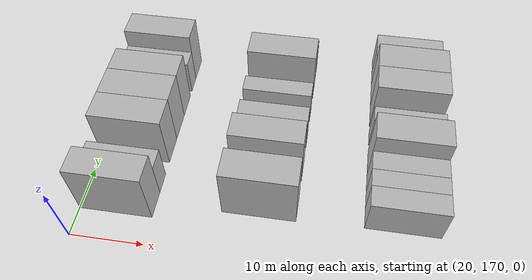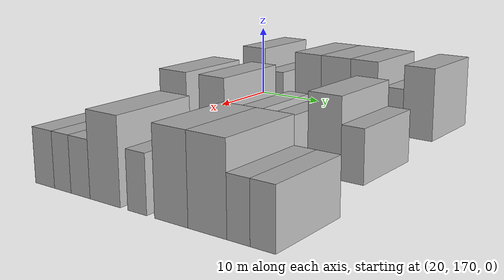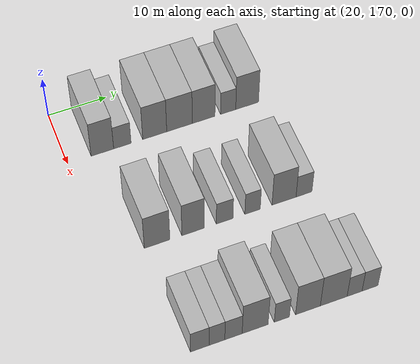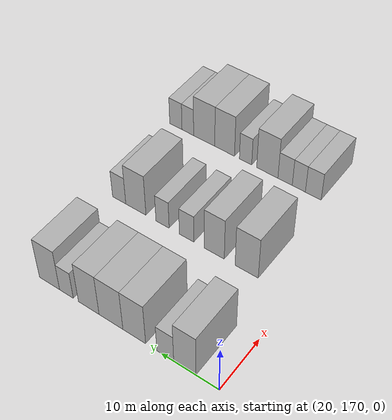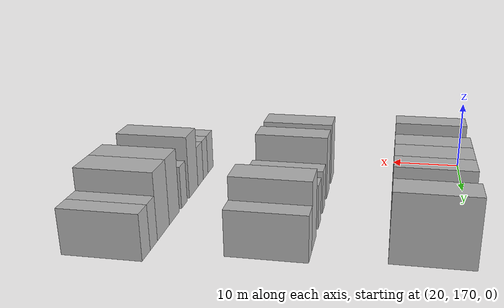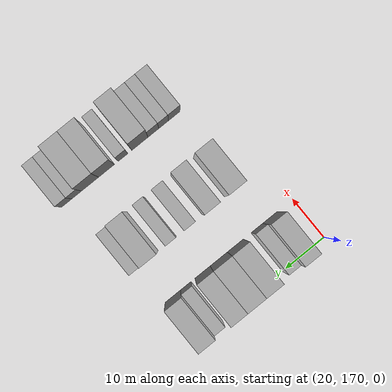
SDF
<sdf version="1.6">
 <world name="default">
  <model name="building_105">
   <static>1</static>
   <pose>25.0000 175.8924 0 0.000000 0.000000 0.000000</pose>
   <link name="link">
    <pose>0 0 4.50 0 0 0</pose>
    <collision name="collision"><geometry><box><size>10.0000 3.8440 9.0000</size></box></geometry></collision>
    <visual name="visual">
     <cast_shadows>0</cast_shadows>
     <geometry><box><size>10.0000 3.8440 9.0000</size></box></geometry>
     <material>
      <script>
       <uri>model://HANNAS_wall/materials/scripts</uri>
       <uri>model://HANNAS_wall/materials/textures</uri>
       <name>vrc/HANNAS_wall</name>
      </script>
     </material>
    </visual>
   </link>
  </model>
  <model name="building_106">
   <static>1</static>
   <pose>25.0000 179.3023 0 0.000000 0.000000 0.000000</pose>
   <link name="link">
    <pose>0 0 3.00 0 0 0</pose>
    <collision name="collision"><geometry><box><size>10.0000 2.9758 6.0000</size></box></geometry></collision>
    <visual name="visual">
     <cast_shadows>0</cast_shadows>
     <geometry><box><size>10.0000 2.9758 6.0000</size></box></geometry>
     <material>
      <script>
       <uri>model://HANNAS_wall/materials/scripts</uri>
       <uri>model://HANNAS_wall/materials/textures</uri>
       <name>vrc/HANNAS_wall</name>
      </script>
     </material>
    </visual>
   </link>
  </model>
  <model name="building_107">
   <static>1</static>
   <pose>25.0000 184.8642 0 0.000000 0.000000 0.000000</pose>
   <link name="link">
    <pose>0 0 4.50 0 0 0</pose>
    <collision name="collision"><geometry><box><size>10.0000 4.1479 9.0000</size></box></geometry></collision>
    <visual name="visual">
     <cast_shadows>0</cast_shadows>
     <geometry><box><size>10.0000 4.1479 9.0000</size></box></geometry>
     <material>
      <script>
       <uri>model://HANNAS_wall/materials/scripts</uri>
       <uri>model://HANNAS_wall/materials/textures</uri>
       <name>vrc/HANNAS_wall</name>
      </script>
     </material>
    </visual>
   </link>
  </model>
  <model name="building_108">
   <static>1</static>
   <pose>25.0000 189.1659 0 0.000000 0.000000 0.000000</pose>
   <link name="link">
    <pose>0 0 4.50 0 0 0</pose>
    <collision name="collision"><geometry><box><size>10.0000 4.4556 9.0000</size></box></geometry></collision>
    <visual name="visual">
     <cast_shadows>0</cast_shadows>
     <geometry><box><size>10.0000 4.4556 9.0000</size></box></geometry>
     <material>
      <script>
       <uri>model://HANNAS_wall/materials/scripts</uri>
       <uri>model://HANNAS_wall/materials/textures</uri>
       <name>vrc/HANNAS_wall</name>
      </script>
     </material>
    </visual>
   </link>
  </model>
  <model name="building_109">
   <static>1</static>
   <pose>25.0000 193.3705 0 0.000000 0.000000 0.000000</pose>
   <link name="link">
    <pose>0 0 4.50 0 0 0</pose>
    <collision name="collision"><geometry><box><size>10.0000 3.9536 9.0000</size></box></geometry></collision>
    <visual name="visual">
     <cast_shadows>0</cast_shadows>
     <geometry><box><size>10.0000 3.9536 9.0000</size></box></geometry>
     <material>
      <script>
       <uri>model://HANNAS_wall/materials/scripts</uri>
       <uri>model://HANNAS_wall/materials/textures</uri>
       <name>vrc/HANNAS_wall</name>
      </script>
     </material>
    </visual>
   </link>
  </model>
  <model name="building_110">
   <static>1</static>
   <pose>25.0000 197.6807 0 0.000000 0.000000 0.000000</pose>
   <link name="link">
    <pose>0 0 3.00 0 0 0</pose>
    <collision name="collision"><geometry><box><size>10.0000 2.6667 6.0000</size></box></geometry></collision>
    <visual name="visual">
     <cast_shadows>0</cast_shadows>
     <geometry><box><size>10.0000 2.6667 6.0000</size></box></geometry>
     <material>
      <script>
       <uri>model://HANNAS_wall/materials/scripts</uri>
       <uri>model://HANNAS_wall/materials/textures</uri>
       <name>vrc/HANNAS_wall</name>
      </script>
     </material>
    </visual>
   </link>
  </model>
  <model name="building_111">
   <static>1</static>
   <pose>25.0000 201.0254 0 0.000000 0.000000 0.000000</pose>
   <link name="link">
    <pose>0 0 4.50 0 0 0</pose>
    <collision name="collision"><geometry><box><size>10.0000 4.0227 9.0000</size></box></geometry></collision>
    <visual name="visual">
     <cast_shadows>0</cast_shadows>
     <geometry><box><size>10.0000 4.0227 9.0000</size></box></geometry>
     <material>
      <script>
       <uri>model://HANNAS_wall/materials/scripts</uri>
       <uri>model://HANNAS_wall/materials/textures</uri>
       <name>vrc/HANNAS_wall</name>
      </script>
     </material>
    </visual>
   </link>
  </model>
  <model name="building_227">
   <static>1</static>
   <pose>44.0000 178.2673 0 0.000000 0.000000 0.000000</pose>
   <link name="link">
    <pose>0 0 4.50 0 0 0</pose>
    <collision name="collision"><geometry><box><size>10.0000 4.2207 9.0000</size></box></geometry></collision>
    <visual name="visual">
     <cast_shadows>0</cast_shadows>
     <geometry><box><size>10.0000 4.2207 9.0000</size></box></geometry>
     <material>
      <script>
       <uri>model://HANNAS_wall/materials/scripts</uri>
       <uri>model://HANNAS_wall/materials/textures</uri>
       <name>vrc/HANNAS_wall</name>
      </script>
     </material>
    </visual>
   </link>
  </model>
  <model name="building_228">
   <static>1</static>
   <pose>44.0000 184.2509 0 0.000000 0.000000 0.000000</pose>
   <link name="link">
    <pose>0 0 4.50 0 0 0</pose>
    <collision name="collision"><geometry><box><size>10.0000 3.7465 9.0000</size></box></geometry></collision>
    <visual name="visual">
     <cast_shadows>0</cast_shadows>
     <geometry><box><size>10.0000 3.7465 9.0000</size></box></geometry>
     <material>
      <script>
       <uri>model://HANNAS_wall/materials/scripts</uri>
       <uri>model://HANNAS_wall/materials/textures</uri>
       <name>vrc/HANNAS_wall</name>
      </script>
     </material>
    </visual>
   </link>
  </model>
  <model name="building_229">
   <static>1</static>
   <pose>44.0000 189.5262 0 0.000000 0.000000 0.000000</pose>
   <link name="link">
    <pose>0 0 3.00 0 0 0</pose>
    <collision name="collision"><geometry><box><size>10.0000 2.8040 6.0000</size></box></geometry></collision>
    <visual name="visual">
     <cast_shadows>0</cast_shadows>
     <geometry><box><size>10.0000 2.8040 6.0000</size></box></geometry>
     <material>
      <script>
       <uri>model://HANNAS_wall/materials/scripts</uri>
       <uri>model://HANNAS_wall/materials/textures</uri>
       <name>vrc/HANNAS_wall</name>
      </script>
     </material>
    </visual>
   </link>
  </model>
  <model name="building_230">
   <static>1</static>
   <pose>44.0000 194.2354 0 0.000000 0.000000 0.000000</pose>
   <link name="link">
    <pose>0 0 3.00 0 0 0</pose>
    <collision name="collision"><geometry><box><size>10.0000 2.6144 6.0000</size></box></geometry></collision>
    <visual name="visual">
     <cast_shadows>0</cast_shadows>
     <geometry><box><size>10.0000 2.6144 6.0000</size></box></geometry>
     <material>
      <script>
       <uri>model://HANNAS_wall/materials/scripts</uri>
       <uri>model://HANNAS_wall/materials/textures</uri>
       <name>vrc/HANNAS_wall</name>
      </script>
     </material>
    </visual>
   </link>
  </model>
  <model name="building_231">
   <static>1</static>
   <pose>44.0000 199.5970 0 0.000000 0.000000 0.000000</pose>
   <link name="link">
    <pose>0 0 4.50 0 0 0</pose>
    <collision name="collision"><geometry><box><size>10.0000 4.1090 9.0000</size></box></geometry></collision>
    <visual name="visual">
     <cast_shadows>0</cast_shadows>
     <geometry><box><size>10.0000 4.1090 9.0000</size></box></geometry>
     <material>
      <script>
       <uri>model://HANNAS_wall/materials/scripts</uri>
       <uri>model://HANNAS_wall/materials/textures</uri>
       <name>vrc/HANNAS_wall</name>
      </script>
     </material>
    </visual>
   </link>
  </model>
  <model name="building_232">
   <static>1</static>
   <pose>44.0000 203.0188 0 0.000000 0.000000 0.000000</pose>
   <link name="link">
    <pose>0 0 3.00 0 0 0</pose>
    <collision name="collision"><geometry><box><size>10.0000 2.7346 6.0000</size></box></geometry></collision>
    <visual name="visual">
     <cast_shadows>0</cast_shadows>
     <geometry><box><size>10.0000 2.7346 6.0000</size></box></geometry>
     <material>
      <script>
       <uri>model://HANNAS_wall/materials/scripts</uri>
       <uri>model://HANNAS_wall/materials/textures</uri>
       <name>vrc/HANNAS_wall</name>
      </script>
     </material>
    </visual>
   </link>
  </model>
  <model name="building_341">
   <static>1</static>
   <pose>63.0000 178.0288 0 0.000000 0.000000 0.000000</pose>
   <link name="link">
    <pose>0 0 3.00 0 0 0</pose>
    <collision name="collision"><geometry><box><size>10.0000 2.9754 6.0000</size></box></geometry></collision>
    <visual name="visual">
     <cast_shadows>0</cast_shadows>
     <geometry><box><size>10.0000 2.9754 6.0000</size></box></geometry>
     <material>
      <script>
       <uri>model://HANNAS_wall/materials/scripts</uri>
       <uri>model://HANNAS_wall/materials/textures</uri>
       <name>vrc/HANNAS_wall</name>
      </script>
     </material>
    </visual>
   </link>
  </model>
  <model name="building_342">
   <static>1</static>
   <pose>63.0000 180.7701 0 0.000000 0.000000 0.000000</pose>
   <link name="link">
    <pose>0 0 3.00 0 0 0</pose>
    <collision name="collision"><geometry><box><size>10.0000 2.5071 6.0000</size></box></geometry></collision>
    <visual name="visual">
     <cast_shadows>0</cast_shadows>
     <geometry><box><size>10.0000 2.5071 6.0000</size></box></geometry>
     <material>
      <script>
       <uri>model://HANNAS_wall/materials/scripts</uri>
       <uri>model://HANNAS_wall/materials/textures</uri>
       <name>vrc/HANNAS_wall</name>
      </script>
     </material>
    </visual>
   </link>
  </model>
  <model name="building_343">
   <static>1</static>
   <pose>63.0000 183.4162 0 0.000000 0.000000 0.000000</pose>
   <link name="link">
    <pose>0 0 3.00 0 0 0</pose>
    <collision name="collision"><geometry><box><size>10.0000 2.7852 6.0000</size></box></geometry></collision>
    <visual name="visual">
     <cast_shadows>0</cast_shadows>
     <geometry><box><size>10.0000 2.7852 6.0000</size></box></geometry>
     <material>
      <script>
       <uri>model://HANNAS_wall/materials/scripts</uri>
       <uri>model://HANNAS_wall/materials/textures</uri>
       <name>vrc/HANNAS_wall</name>
      </script>
     </material>
    </visual>
   </link>
  </model>
  <model name="building_344">
   <static>1</static>
   <pose>63.0000 186.9040 0 0.000000 0.000000 0.000000</pose>
   <link name="link">
    <pose>0 0 4.50 0 0 0</pose>
    <collision name="collision"><geometry><box><size>10.0000 4.1905 9.0000</size></box></geometry></collision>
    <visual name="visual">
     <cast_shadows>0</cast_shadows>
     <geometry><box><size>10.0000 4.1905 9.0000</size></box></geometry>
     <material>
      <script>
       <uri>model://HANNAS_wall/materials/scripts</uri>
       <uri>model://HANNAS_wall/materials/textures</uri>
       <name>vrc/HANNAS_wall</name>
      </script>
     </material>
    </visual>
   </link>
  </model>
  <model name="building_345">
   <static>1</static>
   <pose>63.0000 191.2353 0 0.000000 0.000000 0.000000</pose>
   <link name="link">
    <pose>0 0 3.00 0 0 0</pose>
    <collision name="collision"><geometry><box><size>10.0000 2.4720 6.0000</size></box></geometry></collision>
    <visual name="visual">
     <cast_shadows>0</cast_shadows>
     <geometry><box><size>10.0000 2.4720 6.0000</size></box></geometry>
     <material>
      <script>
       <uri>model://HANNAS_wall/materials/scripts</uri>
       <uri>model://HANNAS_wall/materials/textures</uri>
       <name>vrc/HANNAS_wall</name>
      </script>
     </material>
    </visual>
   </link>
  </model>
  <model name="building_346">
   <static>1</static>
   <pose>63.0000 195.5078 0 0.000000 0.000000 0.000000</pose>
   <link name="link">
    <pose>0 0 4.50 0 0 0</pose>
    <collision name="collision"><geometry><box><size>10.0000 4.0731 9.0000</size></box></geometry></collision>
    <visual name="visual">
     <cast_shadows>0</cast_shadows>
     <geometry><box><size>10.0000 4.0731 9.0000</size></box></geometry>
     <material>
      <script>
       <uri>model://HANNAS_wall/materials/scripts</uri>
       <uri>model://HANNAS_wall/materials/textures</uri>
       <name>vrc/HANNAS_wall</name>
      </script>
     </material>
    </visual>
   </link>
  </model>
  <model name="building_347">
   <static>1</static>
   <pose>63.0000 199.7609 0 0.000000 0.000000 0.000000</pose>
   <link name="link">
    <pose>0 0 4.50 0 0 0</pose>
    <collision name="collision"><geometry><box><size>10.0000 4.4329 9.0000</size></box></geometry></collision>
    <visual name="visual">
     <cast_shadows>0</cast_shadows>
     <geometry><box><size>10.0000 4.4329 9.0000</size></box></geometry>
     <material>
      <script>
       <uri>model://HANNAS_wall/materials/scripts</uri>
       <uri>model://HANNAS_wall/materials/textures</uri>
       <name>vrc/HANNAS_wall</name>
      </script>
     </material>
    </visual>
   </link>
  </model>
  <model name="building_348">
   <static>1</static>
   <pose>63.0000 203.2202 0 0.000000 0.000000 0.000000</pose>
   <link name="link">
    <pose>0 0 3.00 0 0 0</pose>
    <collision name="collision"><geometry><box><size>10.0000 2.4858 6.0000</size></box></geometry></collision>
    <visual name="visual">
     <cast_shadows>0</cast_shadows>
     <geometry><box><size>10.0000 2.4858 6.0000</size></box></geometry>
     <material>
      <script>
       <uri>model://HANNAS_wall/materials/scripts</uri>
       <uri>model://HANNAS_wall/materials/textures</uri>
       <name>vrc/HANNAS_wall</name>
      </script>
     </material>
    </visual>
   </link>
  </model>
  <model name="building_349">
   <static>1</static>
   <pose>63.0000 205.7888 0 0.000000 0.000000 0.000000</pose>
   <link name="link">
    <pose>0 0 3.00 0 0 0</pose>
    <collision name="collision"><geometry><box><size>10.0000 2.6513 6.0000</size></box></geometry></collision>
    <visual name="visual">
     <cast_shadows>0</cast_shadows>
     <geometry><box><size>10.0000 2.6513 6.0000</size></box></geometry>
     <material>
      <script>
       <uri>model://HANNAS_wall/materials/scripts</uri>
       <uri>model://HANNAS_wall/materials/textures</uri>
       <name>vrc/HANNAS_wall</name>
      </script>
     </material>
    </visual>
   </link>
  </model>
 </world>
</sdf>
